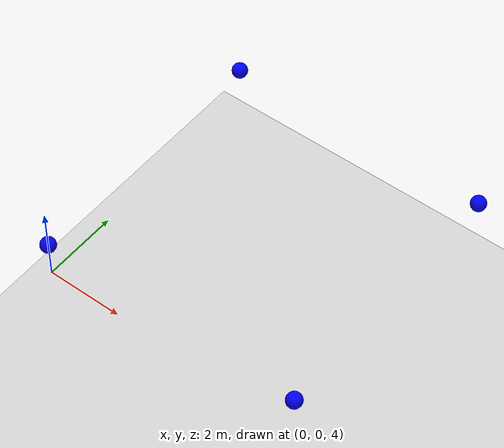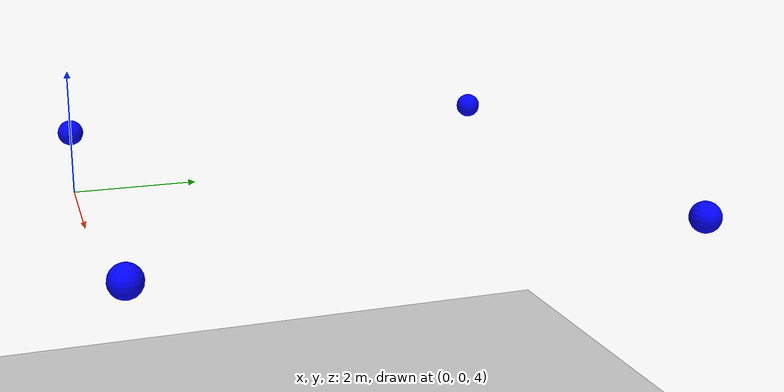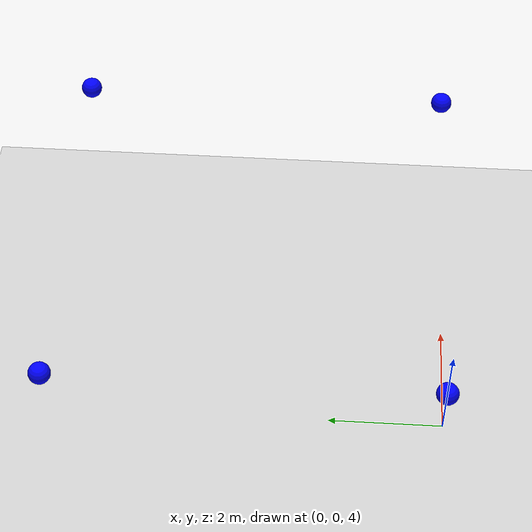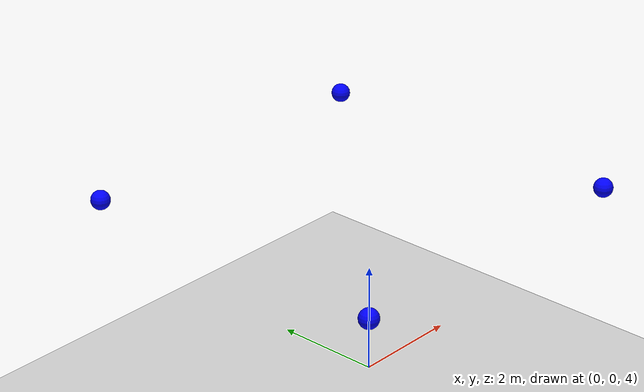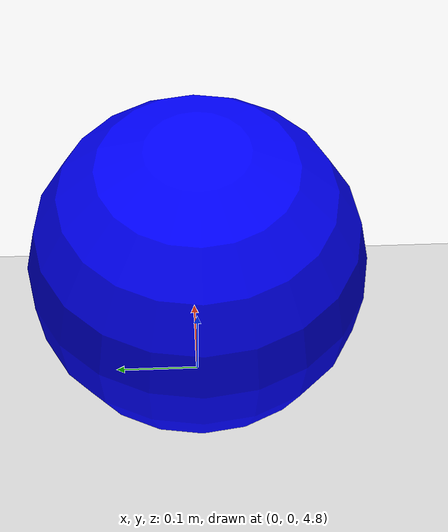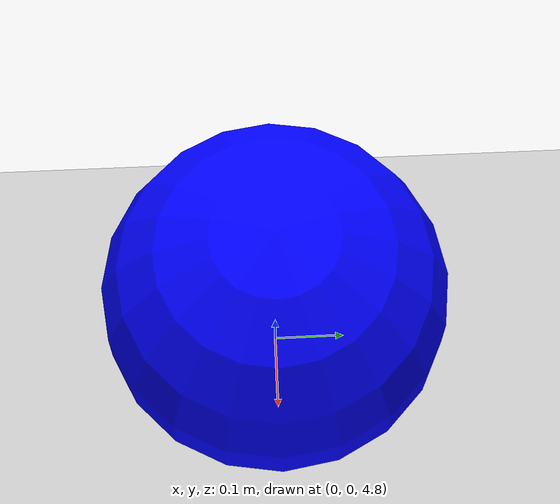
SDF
<sdf version="1.5">
 <world name="default">
  <physics type="ode">
   <ode>
    <solver><type>quick</type><iters>100</iters><sor>1.0</sor></solver>
    <constraints>
     <cfm>0.0</cfm>
     <erp>0.9</erp>
     <contact_max_correcting_vel>0.1</contact_max_correcting_vel>
     <contact_surface_layer>0.0</contact_surface_layer>
    </constraints>
   </ode>
   <real_time_update_rate>-1</real_time_update_rate>
  </physics>
  <model name="ground_plane">
   <static>true</static>
   <link name="link">
    <collision name="collision">
     <geometry><plane><normal>0 0 1</normal><size>5000 5000</size></plane></geometry>
     <surface><friction><ode><mu>1</mu><mu2>1</mu2></ode></friction></surface>
    </collision>
    <visual name="runway">
     <pose>000 0 0.005 0 0 0</pose>
     <cast_shadows>false</cast_shadows>
     <geometry><plane><normal>0 0 1</normal><size>1829 45</size></plane></geometry>
     <material>
      <script><uri>file://media/materials/scripts/gazebo.material</uri><name>Gazebo/Runway</name></script>
     </material>
    </visual>
    <visual name="grass">
     <pose>0 0 -0.1 0 0 0</pose>
     <cast_shadows>false</cast_shadows>
     <geometry><plane><normal>0 0 1</normal><size>5000 5000</size></plane></geometry>
     <material>
      <script><uri>file://media/materials/scripts/gazebo.material</uri><name>Gazebo/Grass</name></script>
     </material>
    </visual>
   </link>
  </model>
  <include><uri>model://sun</uri></include>
  <model name="waypoints_0">
   <pose>0 0 5 0 0 0</pose>
   <link name="link">
    <inertial>
     <mass>1</mass>
     <inertia><ixx>0.1</ixx></inertia>
     <inertia><ixy>0</ixy></inertia>
     <inertia><ixz>0</ixz></inertia>
     <inertia><iyy>0.1</iyy></inertia>
     <inertia><iyz>0</iyz></inertia>
     <inertia><izz>0.1</izz></inertia>
    </inertial>
    <gravity>0</gravity>
    <visual name="visual">
     <geometry><sphere><radius>0.2</radius></sphere></geometry>
     <material>
      <script><name>Gazebo/Grey</name><uri>file://media/materials/scripts/gazebo.material</uri></script>
      <shader type="pixel"><normal_map>__default__</normal_map></shader>
      <ambient>0.3 0.3 0.3 1</ambient>
      <diffuse>0.0 0.0 1.0 1</diffuse>
      <specular>0.01 0.01 0.01 1</specular>
      <emissive>0 0 0 1</emissive>
     </material>
     <transparency>0.05</transparency>
    </visual>
   </link>
   <static>0</static>
  </model>
  <model name="waypoints_1">
   <pose>0 7 5 0 0 0</pose>
   <link name="link">
    <inertial>
     <mass>1</mass>
     <inertia><ixx>0.1</ixx></inertia>
     <inertia><ixy>0</ixy></inertia>
     <inertia><ixz>0</ixz></inertia>
     <inertia><iyy>0.1</iyy></inertia>
     <inertia><iyz>0</iyz></inertia>
     <inertia><izz>0.1</izz></inertia>
    </inertial>
    <gravity>0</gravity>
    <visual name="visual">
     <geometry><sphere><radius>0.2</radius></sphere></geometry>
     <material>
      <script><name>Gazebo/Grey</name><uri>file://media/materials/scripts/gazebo.material</uri></script>
      <shader type="pixel"><normal_map>__default__</normal_map></shader>
      <ambient>0.3 0.3 0.3 1</ambient>
      <diffuse>0.0 0.0 1.0 1</diffuse>
      <specular>0.01 0.01 0.01 1</specular>
      <emissive>0 0 0 1</emissive>
     </material>
     <transparency>0.05</transparency>
    </visual>
   </link>
   <static>0</static>
  </model>
  <model name="waypoints_2">
   <pose>7 7 5 0 0 0</pose>
   <link name="link">
    <inertial>
     <mass>1</mass>
     <inertia><ixx>0.1</ixx></inertia>
     <inertia><ixy>0</ixy></inertia>
     <inertia><ixz>0</ixz></inertia>
     <inertia><iyy>0.1</iyy></inertia>
     <inertia><iyz>0</iyz></inertia>
     <inertia><izz>0.1</izz></inertia>
    </inertial>
    <gravity>0</gravity>
    <visual name="visual">
     <geometry><sphere><radius>0.2</radius></sphere></geometry>
     <material>
      <script><name>Gazebo/Grey</name><uri>file://media/materials/scripts/gazebo.material</uri></script>
      <shader type="pixel"><normal_map>__default__</normal_map></shader>
      <ambient>0.3 0.3 0.3 1</ambient>
      <diffuse>0.0 0.0 1.0 1</diffuse>
      <specular>0.01 0.01 0.01 1</specular>
      <emissive>0 0 0 1</emissive>
     </material>
     <transparency>0.05</transparency>
    </visual>
   </link>
   <static>0</static>
  </model>
  <model name="waypoints_3">
   <pose>7 0 5 0 0 0</pose>
   <link name="link">
    <inertial>
     <mass>1</mass>
     <inertia><ixx>0.1</ixx></inertia>
     <inertia><ixy>0</ixy></inertia>
     <inertia><ixz>0</ixz></inertia>
     <inertia><iyy>0.1</iyy></inertia>
     <inertia><iyz>0</iyz></inertia>
     <inertia><izz>0.1</izz></inertia>
    </inertial>
    <gravity>0</gravity>
    <visual name="visual">
     <geometry><sphere><radius>0.2</radius></sphere></geometry>
     <material>
      <script><name>Gazebo/Grey</name><uri>file://media/materials/scripts/gazebo.material</uri></script>
      <shader type="pixel"><normal_map>__default__</normal_map></shader>
      <ambient>0.3 0.3 0.3 1</ambient>
      <diffuse>0.0 0.0 1.0 1</diffuse>
      <specular>0.01 0.01 0.01 1</specular>
      <emissive>0 0 0 1</emissive>
     </material>
     <transparency>0.05</transparency>
    </visual>
   </link>
   <static>0</static>
  </model>
  <model name="waypoints_4">
   <pose>0 0 5 0 0 0</pose>
   <link name="link">
    <inertial>
     <mass>1</mass>
     <inertia><ixx>0.1</ixx></inertia>
     <inertia><ixy>0</ixy></inertia>
     <inertia><ixz>0</ixz></inertia>
     <inertia><iyy>0.1</iyy></inertia>
     <inertia><iyz>0</iyz></inertia>
     <inertia><izz>0.1</izz></inertia>
    </inertial>
    <gravity>0</gravity>
    <visual name="visual">
     <geometry><sphere><radius>0.2</radius></sphere></geometry>
     <material>
      <script><name>Gazebo/Grey</name><uri>file://media/materials/scripts/gazebo.material</uri></script>
      <shader type="pixel"><normal_map>__default__</normal_map></shader>
      <ambient>0.3 0.3 0.3 1</ambient>
      <diffuse>0.0 0.0 1.0 1</diffuse>
      <specular>0.01 0.01 0.01 1</specular>
      <emissive>0 0 0 1</emissive>
     </material>
     <transparency>0.05</transparency>
    </visual>
   </link>
   <static>0</static>
  </model>
 </world>
</sdf>
